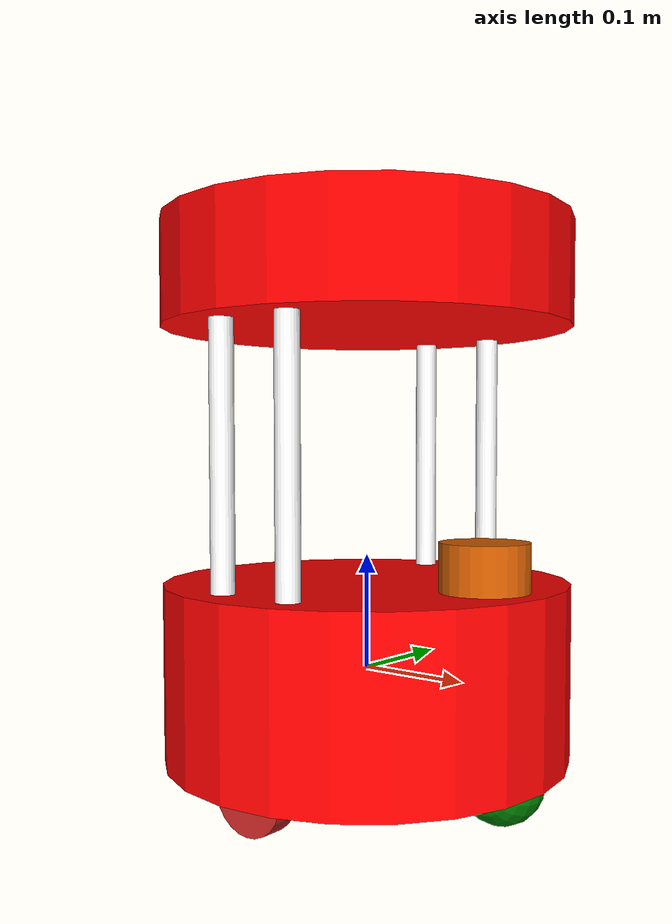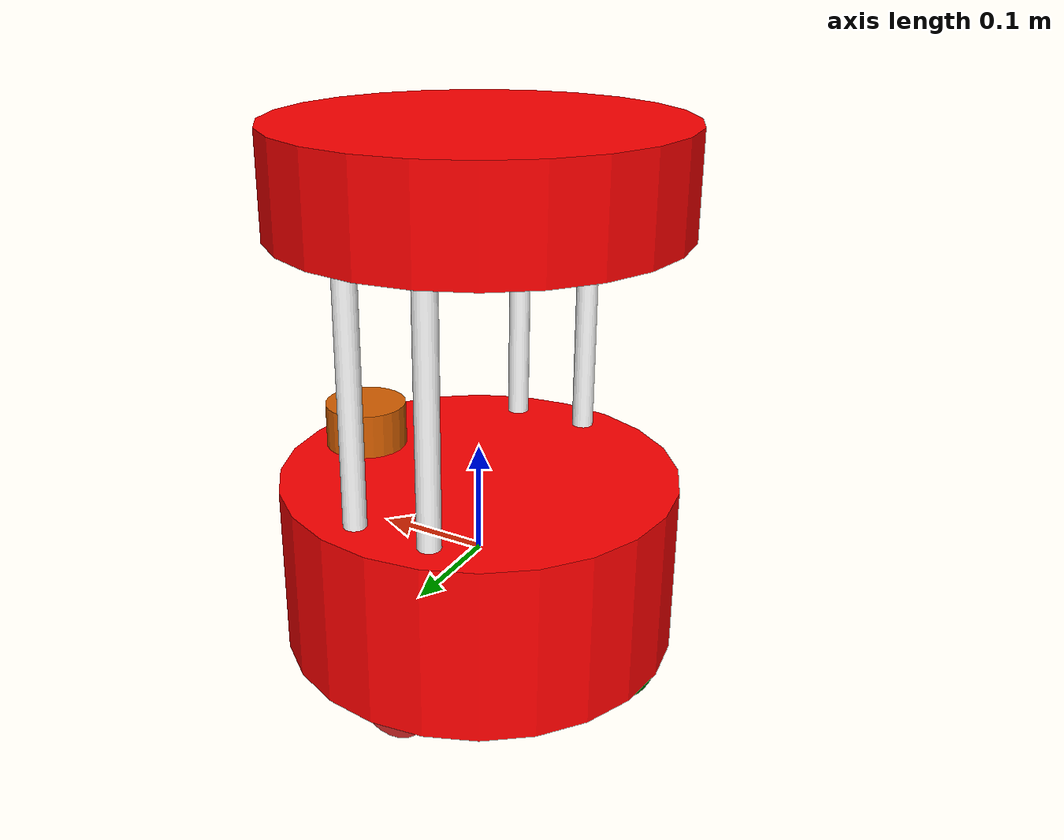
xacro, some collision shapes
<?xml version="1.0"?>
<robot xmlns:xacro="http://www.ros.org/wiki/xacro" name="barista_robot">
<xacro:arg name="include_laser" default="true"/>
<xacro:arg name="robot_name" default=""/>
<xacro:property name="robot_name" value="$(arg robot_name)"/>

<xacro:property name="baseheadlink_radius" value="0.178"/>
<xacro:property name="baselink_height" value="0.155"/>
<xacro:property name="headlink_height" value="0.090"/>
<xacro:property name="headlink_mass" value="10.335"/>
<xacro:property name="rod_radius" value="0.010"/>
<xacro:property name="rod_height" value="0.220"/>
<xacro:property name="rod_mass" value="0.1"/>
<xacro:property name="wheel_radius" value="0.0352"/>
<xacro:property name="wheel_width" value="0.0206"/>
<xacro:property name="wheel_mass" value="1.0"/>

<xacro:property name="laser_box_width" value="0.05"/>
<xacro:property name="laser_box_length" value="0.05"/>
<xacro:property name="laser_box_height" value="0.05"/>

  <material name="red">
      <color rgba="1.0 0.0 0.0 1"/>
  </material>

  <material name="green_light">
      <color rgba="0.0 1.0 0.0 1"/>
  </material>

  <material name="green_dark">
    <color rgba="0.0 0.5 0.0 1"/>
  </material>

  <material name="blue">
      <color rgba="0.0 0.0 1.0 1"/>
  </material>

  <material name="yellow">
      <color rgba="1.0 1.0 0.0 1"/>
  </material>

  <material name="black">
      <color rgba="0.0 0.0 0.0 1"/>
  </material>

  <material name="white">
      <color rgba="1.0 1.0 1.0 1"/>
  </material>

  <link name="base_link">
    <visual>
      <geometry>
      <cylinder radius="${baseheadlink_radius}" length="${baselink_height}"/>
      </geometry>

    <xacro:if value="${robot_name == 'morty'}">
                <material name="green_dark"/>
    </xacro:if>
     <xacro:unless value="${robot_name == 'morty'}">
                <material name="red"/>
    </xacro:unless>

    </visual>

    <collision>
          <geometry>
      <cylinder radius="${baseheadlink_radius}" length="${baselink_height}"/>
      </geometry>
    </collision>

        <inertial>
      <mass value="17.8"/>
      <origin rpy="0 0 0" xyz="0 0 0"/>
      <inertia ixx="0.17663088333333335" ixy="0" ixz="0" iyy="0.17663088333333335" iyz="0" izz="0.2819876"/>
    </inertial>

  </link>

    <xacro:if value="${robot_name == 'morty'}">
    <gazebo reference="base_link">
        <material>Gazebo/Green</material>
    </gazebo>
    </xacro:if>
     <xacro:unless value="${robot_name == 'morty'}">
    <gazebo reference="base_link">
        <material>Gazebo/Red</material>
    </gazebo>
    </xacro:unless>

 <!-- Attaching TF for TF follow -->
  <link name="barista_attach_frame">
  </link>

  <joint name="barista_attach_frame_joint" type="fixed">
    <origin rpy="0 0 0" xyz="0.5 0.5 0" />
    <parent link="base_link" />
    <child link="barista_attach_frame" />
  </joint>

  <!-- Standoff Macro -->
  <xacro:include filename="$(find barista_robot_description)/urdf/standoff.xacro" />
  <xacro:standoff standoff_name="base_to_head_rod_1" />
  <xacro:standoff standoff_name="base_to_head_rod_2" />
  <xacro:standoff standoff_name="base_to_head_rod_3" />
  <xacro:standoff standoff_name="base_to_head_rod_4" />

  <joint name="base_link_to_rod_1" type="fixed">
        <origin rpy="0 0 1.5708" xyz="0.0356 0.140 0.0775" />
        <parent link="base_link" />
        <child link="base_to_head_rod_1" />/>
   </joint>
  <joint name="base_link_to_rod_2" type="fixed">
        <origin rpy="0 0 1.5708" xyz="-0.0356 0.140 0.0775" />
        <parent link="base_link" />
        <child link="base_to_head_rod_2" />/>
   </joint>
  <joint name="base_link_to_rod_3" type="fixed">
        <origin rpy="0 0 1.5708" xyz="0.0356 -0.140 0.0775" />
        <parent link="base_link" />
        <child link="base_to_head_rod_3" />/>
   </joint>
  <joint name="base_link_to_rod_4" type="fixed">
        <origin rpy="0 0 1.5708" xyz=" -0.0356 -0.140 0.0775" />
        <parent link="base_link" />
        <child link="base_to_head_rod_4" />/>
   </joint>
  <joint name="base_link_to_head_link" type="fixed">
        <origin rpy="0 0 0" xyz="0 0 0.2975" />
        <parent link="base_link" />
        <child link="head_link" />/>
   </joint>

  <!-- Cup holder tray Macro -->
  <xacro:include filename="$(find barista_robot_description)/urdf/cup_holder_tray.xacro" />
  <xacro:cup_holder_tray cup_holder_tray_name="head_link" />

  <!-- Wheel Macro -->
  <xacro:include filename="$(find barista_robot_description)/urdf/wheel.xacro" />
  <!-- Wheel Left -->
  <xacro:wheel wheel_name="left_wheel" />

  <!-- Wheel Right -->
  <xacro:wheel wheel_name="right_wheel" />

  <joint name="joint_left_wheel" type="continuous">
    <origin rpy="0 0 0" xyz="0 0.14 -0.075"/>
    <child link="left_wheel"/>
    <parent link="base_link"/>
    <axis rpy="0 0 0" xyz="0 1 0"/>
    <limit effort="10000" velocity="1000"/>
    <joint_properties damping="1.0" friction="1.0"/>
  </joint>

  <joint name="joint_right_wheel" type="continuous">
    <origin rpy="0 0 0" xyz="0 -0.14 -0.075"/>
    <child link="right_wheel"/>
    <parent link="base_link"/>
    <axis rpy="0 0 0" xyz="0 1 0"/>
    <limit effort="10000" velocity="1000"/>
    <joint_properties damping="1.0" friction="1.0"/>
  </joint>

<!-- Caster Wheel Front -->

  <joint name="front_pitch_joint" type="continuous">
    <origin rpy="0 0 0" xyz="0.14 0 -0.075" />
    <parent link="base_link" />
    <child link="front_pitch_link" />
    <axis xyz="0 1 0" />
    <limit effort="1000.0" velocity="100.0" />
    <dynamics damping="0.1" friction="0.5"/>
  </joint>
  <link name="front_pitch_link">
    <visual>
      <origin rpy="0 1.5707 1.5707" xyz="0 0 0"/>
      <geometry>
        <sphere radius="0.0352"/>
      </geometry>
      <material name="green_dark"/>
    </visual>
    <collision>
          <origin rpy="0 1.5707 1.5707" xyz="0 0 0"/>
      <geometry>
        <sphere radius="0.0352"/>
      </geometry>
    </collision>
      <inertial>
          <origin rpy="0 1.5707 1.5707" xyz="0 0 0"/>
          <mass value="0.3"/>
          <inertia ixx="0.0001486848" ixy="0" ixz="0" iyy="0.0001486848" iyz="0" izz="0.0001486848"/>
      </inertial>
  </link>
  <gazebo reference="front_pitch_link">
    <kp>1000000000000000000000000000.0</kp>
    <kd>1000000000000000000000000000.0</kd>
    <mu1>0.5</mu1>
    <mu2>0.5</mu2>
    <material>Gazebo/Red</material>
</gazebo>

<!-- Caster Wheel Back -->

  <joint name="back_pitch_joint" type="continuous">
    <origin rpy="0 0 0" xyz="-0.14 0 -0.075" />
    <parent link="base_link" />
    <child link="back_pitch_link" />
    <axis xyz="0 1 0" />
    <limit effort="1000.0" velocity="100.0" />
    <dynamics damping="0.1" friction="0.5"/>
  </joint>

  <link name="back_pitch_link">
    <visual>
      <origin rpy="0 1.5707 1.5707" xyz="0 0 0"/>
      <geometry>
        <sphere radius="0.0352"/>
      </geometry>
      <material name="green_dark"/>
    </visual>
    <collision>
          <origin rpy="0 1.5707 1.5707" xyz="0 0 0"/>
      <geometry>
        <sphere radius="0.0352"/>
      </geometry>
    </collision>
      <inertial>
          <origin rpy="0 1.5707 1.5707" xyz="0 0 0"/>
          <mass value="0.3"/>
          <inertia ixx="0.0001486848" ixy="0" ixz="0" iyy="0.0001486848" iyz="0" izz="0.0001486848"/>
      </inertial>
  </link>
  <gazebo reference="back_pitch_link">
    <kp>1000000000000000000000000000.0</kp>
    <kd>1000000000000000000000000000.0</kd>
    <mu1>0.5</mu1>
    <mu2>0.5</mu2>
    <material>Gazebo/Red</material>
</gazebo>

  <!--if Laser -->
<xacro:if value="$(arg include_laser)">
<xacro:macro name="laser_scan" params="laser_scan_name">
<link name="${laser_scan_name}">
    <visual>
      <origin rpy="0 0 0" xyz="0 0 0"/>
      <geometry>
        <box size="${laser_box_width} ${laser_box_length} ${laser_box_height}"/>
      </geometry>
    </visual>

    <collision>
       <origin rpy="0 0 0" xyz="0 0 0.0204"/>
      <geometry>
       <box size="${laser_box_width} ${laser_box_length} ${laser_box_height}"/>
      </geometry>
    </collision>

    <inertial>
      <mass value="0.01"/>
      <origin rpy="0 0 0" xyz="0 0 0.0204"/>
      <inertia ixx="6.066578520833334e-06" ixy="0" ixz="0" iyy="6.072950163333333e-06" iyz="0" izz="9.365128684166666e-06"/>
    </inertial>
</link>
 <gazebo reference="${laser_scan_name}">
    <material>Gazebo/Yellow</material>
</gazebo>
</xacro:macro>
 <xacro:laser_scan laser_scan_name="laser_scan_link" />

<joint name="laser_scan_link_joint" type="prismatic">
    <origin rpy="0 0 0" xyz="0.1224 0.0 0.0775"/>
    <parent link="base_link"/>
    <child link="laser_scan_link"/>
    <axis xyz="0 0 1"/>
    <limit lower="-0.1" upper="0.0" effort="20.0" velocity="2.0"/>
    <dynamics damping="0.1" friction="1.0"/>
</joint>

<link name="laser_scan_frame">
</link>

<joint name="laser_scan_frame_joint" type="fixed">
    <origin rpy="0 0 0" xyz="0 0 0.06"/>
    <parent link="laser_scan_link"/>
    <child link="laser_scan_frame"/>
    <axis xyz="0 0 0"/>
</joint>

 <!-- Visual Laser Model to be rotated -->
  <link name="laser_scan_model_link">
    <visual>
      <origin rpy="0 0 0" xyz="0 0 0"/>
      <geometry>
        <mesh filename="package://barista_robot_description/meshes/hokuyo_urg_04lx.dae" scale="1.0 1.0 1.0"/>
      </geometry>
    </visual>

    <collision>
       <origin rpy="0 0 0" xyz="0 0 0.0204"/>
      <geometry>
        <cylinder length="0.0408" radius="0.037493"/>
      </geometry>
    </collision>

    <inertial>

      <mass value="0.01"/>
      <origin rpy="0 0 0" xyz="0 0 0.0204"/>
      <inertia ixx="6.066578520833334e-06" ixy="0" ixz="0" iyy="6.072950163333333e-06" iyz="0" izz="9.365128684166666e-06"/>
    </inertial>
  </link>
<gazebo reference="laser_scan_model_link_joint">
    <material>Gazebo/Yellow</material>
</gazebo>
  <joint name="laser_scan_model_link_joint" type="continuous">
    <origin rpy="0 0 0" xyz="0.0 0.0 0.0"/>
    <parent link="laser_scan_link"/>
    <child link="laser_scan_model_link"/>
    <axis xyz="0 0 1"/>
    <limit effort="10.0" velocity="2.0"/>
    <dynamics friction="0.01"/>
  </joint>

<gazebo reference="laser_scan_frame">
    <sensor name="sensor_ray" type="ray">
        <pose>0 0 0 0 0 0</pose>
        <ray>
          <scan>
            <horizontal>
              <samples>200</samples>
              <resolution>1.0</resolution>
              <min_angle>-3.14</min_angle>
              <max_angle>3.14</max_angle>
            </horizontal>
          </scan>
          <range>
            <min>0.1</min>
            <max>5.0</max>
          </range>
        </ray>
        <always_on>true</always_on>
        <visualize>true</visualize>
        <update_rate>100.0</update_rate>
        <plugin name="laser" filename="libgazebo_ros_ray_sensor.so">
          <ros>
            <namespace>/${robot_name}</namespace>
            <remapping>~/out:=scan</remapping>
          </ros>
          <output_type>sensor_msgs/LaserScan</output_type>
          <frame_name>laser_scan_frame</frame_name>
        </plugin>
    </sensor>
      <material>Gazebo/Red</material>
</gazebo>

</xacro:if>

  <!-- JOINT PUBLISHER -->
  <gazebo>
    <plugin name="barista_robot_joint_state" filename="libgazebo_ros_joint_state_publisher.so">
      <ros>
          <namespace>/${robot_name}</namespace>
          <remapping>~/out:=joint_states</remapping>
      </ros>
      <update_rate>30</update_rate>

      <joint_name>joint_left_wheel</joint_name>
      <joint_name>joint_right_wheel</joint_name>
      <joint_name>front_yaw_joint</joint_name>
      <joint_name>back_yaw_joint</joint_name>
      <joint_name>front_roll_joint</joint_name>
      <joint_name>back_roll_joint</joint_name>
      <joint_name>front_pitch_joint</joint_name>
      <joint_name>back_pitch_joint</joint_name>
      <xacro:if value="$(arg include_laser)">
      <joint_name>laser_scan_link_joint</joint_name>
      <joint_name>laser_scan_frame_joint</joint_name>
      <joint_name>laser_scan_model_link_joint</joint_name>
      </xacro:if>
    </plugin>
  </gazebo>

  <gazebo>
    <plugin filename="libgazebo_ros_diff_drive.so" name="differential_drive_controller">
        <ros>
            <namespace>/${robot_name}</namespace>
            <remapping>/cmd_vel:=cmd_vel</remapping>
        </ros>
      <!-- wheels -->
      <left_joint>joint_left_wheel</left_joint>
      <right_joint>joint_right_wheel</right_joint>

      <!-- kinematics -->
      <wheel_separation>0.28</wheel_separation>
      <wheel_diameter>0.0704</wheel_diameter>

      <!-- limits -->
      <max_wheel_torque>1000.0</max_wheel_torque>
      <max_wheel_acceleration>2000.0</max_wheel_acceleration>

      <!-- output -->
      <publish_odom>true</publish_odom>
      <publish_odom_tf>true</publish_odom_tf>

      <!-- TF frames -->
      <odometry_frame>${robot_name}/odom</odometry_frame>>
      <robot_base_frame>${robot_name}/base_link</robot_base_frame>
      <publish_odom_tf>true</publish_odom_tf>
      <publish_wheel_tf>false</publish_wheel_tf>

    </plugin>
  </gazebo>

</robot>

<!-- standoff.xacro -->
<robot xmlns:xacro="http://www.ros.org/wiki/xacro">

<xacro:macro name="standoff" params="standoff_name">
  <link name="${standoff_name}">
      <visual>
    <origin rpy="0 0 1.5707" xyz="0 0 0.110" />
      <geometry>
        <cylinder radius="${rod_radius}" length="${rod_height}"/>
      </geometry>
                  <material name="white"/>
    </visual>

    <collision>
    <origin rpy="0 0 1.5707" xyz="0 0 0.110" />
      <geometry>
        <cylinder radius="${rod_radius}" length="${rod_height}"/>
      </geometry>
    </collision>

      <inertial>
      <mass value="${rod_mass}"/>
    <origin rpy="0 0 1.5707" xyz="0 0 0.110" />
      <inertia ixx="0.00040583333333333335" ixy="0" ixz="0" iyy="0.00040583333333333335" iyz="0" izz="0.000005"/>
    </inertial>
  </link>
<gazebo reference="${standoff_name}">
    <material>Gazebo/Grey</material>
</gazebo>

  </xacro:macro>

</robot>

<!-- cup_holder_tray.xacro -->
<robot xmlns:xacro="http://www.ros.org/wiki/xacro">

<xacro:macro name="cup_holder_tray" params="cup_holder_tray_name">

 <link name="${cup_holder_tray_name}">
      <visual>
    <origin rpy="0 0 0" xyz="0 0 0.045" />
      <geometry>
        <cylinder radius="${baseheadlink_radius}" length="${headlink_height}"/>
      </geometry>

    <xacro:if value="${robot_name == 'morty'}">
                <material name="green_dark"/>
    </xacro:if>
     <xacro:unless value="${robot_name == 'morty'}">
                <material name="red"/>
    </xacro:unless>
    </visual>
   <collision>
       <origin rpy="0 0 0" xyz="0 0 0.045" />
      <geometry>
        <cylinder radius="${baseheadlink_radius}" length="${headlink_height}"/>
      </geometry>
   </collision>
      <inertial>
      <mass value="${headlink_mass}"/>
    <origin rpy="0 0 0" xyz="0 0 0.045" />
      <inertia ixx="0.08883966" ixy="0" ixz="0" iyy="0.08883966" iyz="0" izz="0.16372707"/>
    </inertial>

  </link>
    <xacro:if value="${robot_name == 'morty'}">
    <gazebo reference="${cup_holder_tray_name}">
        <material>Gazebo/Green</material>
    </gazebo>
    </xacro:if>
    <xacro:unless value="${robot_name == 'morty'}">
        <gazebo reference="${cup_holder_tray_name}">
        <material>Gazebo/Red</material>
    </gazebo>
    </xacro:unless>
</xacro:macro>

</robot>

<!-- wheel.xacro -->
<robot xmlns:xacro="http://www.ros.org/wiki/xacro">

<xacro:macro name="wheel" params="wheel_name">

  <link name="${wheel_name}">
      <visual>
        <origin rpy="1.5707 0 0" xyz="0 0 0"/>
        <geometry>
          <cylinder length="${wheel_width}" radius="${wheel_radius}"/>
        </geometry>
      </visual>

      <collision>
        <origin rpy="1.5707 0 0" xyz="0 0 0"/>
        <geometry>
          <cylinder length="${wheel_width}" radius="${wheel_radius}"/>
        </geometry>
      </collision>

      <inertial>
        <origin rpy="1.5707 0 0" xyz="0 0 0"/>
        <mass value="${wheel_mass}"/>
       <inertia ixx="0.00034512333333333334" ixy="0" ixz="0" iyy="0.00034512333333333334" iyz="0" izz="0.00061952"/>
      </inertial>
  </link>
  <gazebo reference="${wheel_name}">
    <kp>1000000000000000000000000000.0</kp>
    <kd>1000000000000000000000000000.0</kd>
    <mu1>0.5</mu1>
    <mu2>0.5</mu2>
    <material>Gazebo/Red</material>
</gazebo>
</xacro:macro>

</robot>
